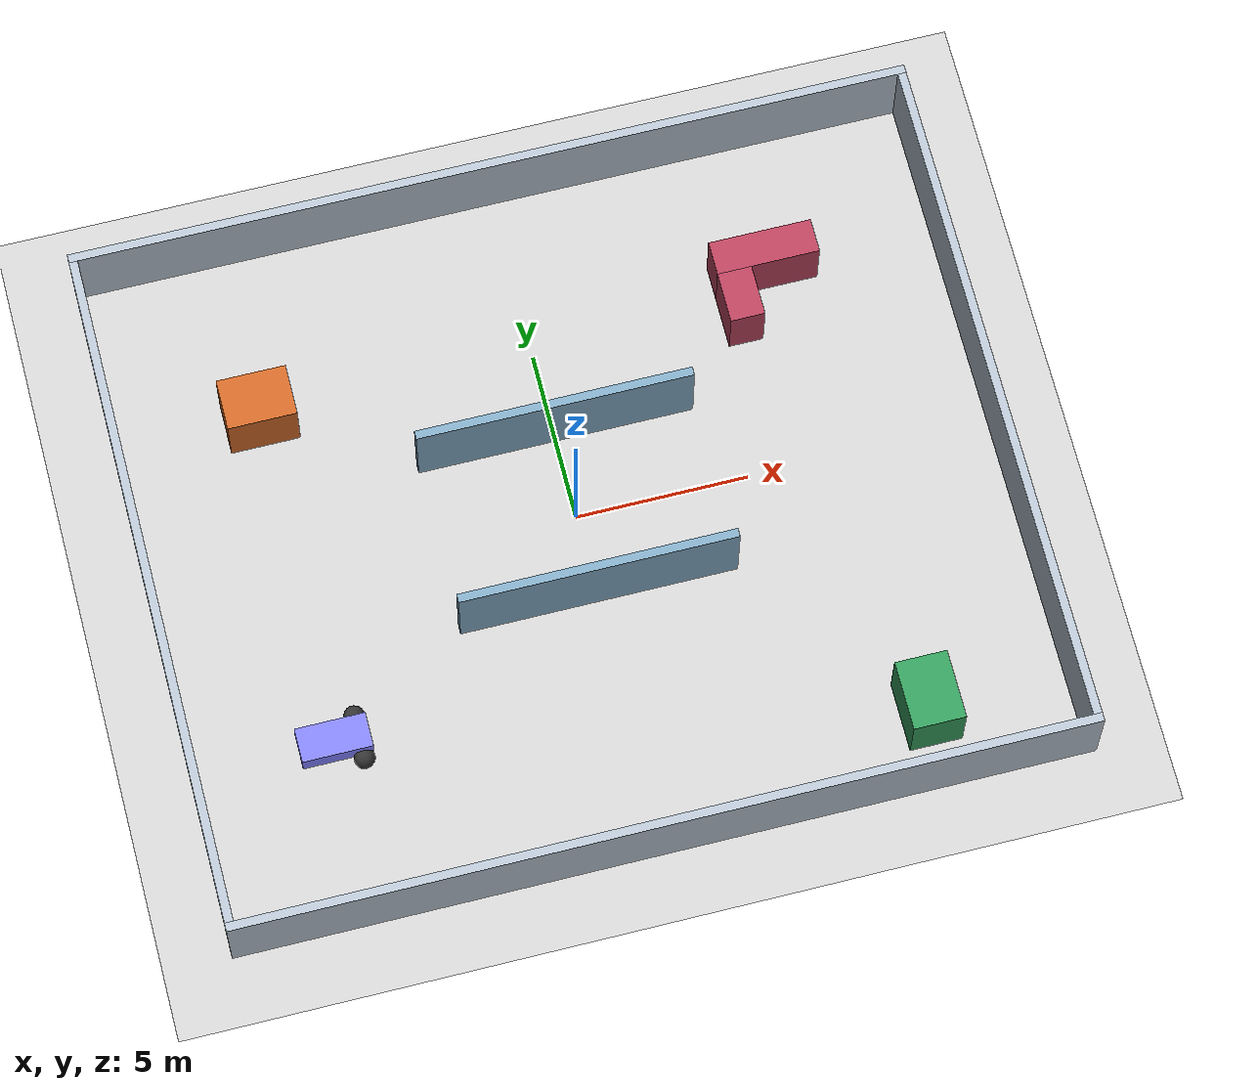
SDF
<?xml version="1.0"?>
<!-- Vehicle and ground derived from ros_gz_sim_demos (Apache-2.0). Modified: independent indoor room, corridor and three obstacles; spawn at (-8,-5). See third_party/README.md. -->
<sdf version="1.8">
  <world name="demo">
    <light name="sun" type="directional">
      <cast_shadows>true</cast_shadows>
      <pose>0 0 10 0 0 0</pose>
      <diffuse>0.8 0.8 0.8 1</diffuse>
      <specular>0.2 0.2 0.2 1</specular>
      <attenuation>
        <range>1000</range>
        <constant>0.9</constant>
        <linear>0.01</linear>
        <quadratic>0.001</quadratic>
      </attenuation>
      <direction>-0.5 0.1 -0.9</direction>
    </light>
    <model name="ground_plane">
      <static>true</static>
      <link name="link">
        <collision name="collision">
          <geometry>
            <plane>
              <normal>0 0 1</normal>
              <size>100 100</size>
            </plane>
          </geometry>
        </collision>
        <visual name="visual">
          <geometry>
            <plane>
              <normal>0 0 1</normal>
              <size>100 100</size>
            </plane>
          </geometry>
          <material>
            <ambient>0.8 0.8 0.8 1</ambient>
            <diffuse>0.8 0.8 0.8 1</diffuse>
            <specular>0.8 0.8 0.8 1</specular>
          </material>
        </visual>
      </link>
    </model>
    <model name="vehicle">
      <pose>-8 -5 0.325 0 0 0</pose>
      <link name="chassis">
        <pose>-0.151427 -0 0.175 0 -0 0</pose>
        <inertial>
          <mass>1.14395</mass>
          <inertia>
            <ixx>0.126164</ixx>
            <ixy>0</ixy>
            <ixz>0</ixz>
            <iyy>0.416519</iyy>
            <iyz>0</iyz>
            <izz>0.481014</izz>
          </inertia>
        </inertial>
        <visual name="visual_chassis">
          <geometry>
            <box>
              <size>2.01142 1 0.568726</size>
            </box>
          </geometry>
          <material>
            <ambient>0.5 0.5 1.0 1</ambient>
            <diffuse>0.5 0.5 1.0 1</diffuse>
            <specular>0.0 0.0 1.0 1</specular>
          </material>
        </visual>
        <collision name="collision_chassis">
          <geometry>
            <box>
              <size>2.01142 1 0.568726</size>
            </box>
          </geometry>
        </collision>
        <sensor name="lidar_2d" type="gpu_lidar">
          <pose>0 0 0.4 0 0 0</pose>
          <topic>/scan</topic>
          <gz_frame_id>vehicle/lidar</gz_frame_id>
          <always_on>true</always_on>
          <update_rate>10</update_rate>
          <visualize>true</visualize>
          <ray>
            <scan>
              <horizontal>
                <samples>360</samples>
                <resolution>1</resolution>
                <min_angle>-3.141592653589793</min_angle>
                <max_angle>3.141592653589793</max_angle>
              </horizontal>
              <vertical>
                <samples>1</samples>
                <resolution>1</resolution>
                <min_angle>0</min_angle>
                <max_angle>0</max_angle>
              </vertical>
            </scan>
            <range>
              <min>0.1</min>
              <max>12.0</max>
              <resolution>0.01</resolution>
            </range>
          </ray>
        </sensor>
      </link>
      <link name="left_wheel">
        <pose>0.554283 0.625029 -0.025 -1.5707 0 0</pose>
        <inertial>
          <mass>2</mass>
          <inertia>
            <ixx>0.145833</ixx>
            <ixy>0</ixy>
            <ixz>0</ixz>
            <iyy>0.145833</iyy>
            <iyz>0</iyz>
            <izz>0.125</izz>
          </inertia>
        </inertial>
        <visual name="visual_left_wheel">
          <geometry>
            <sphere>
              <radius>0.3</radius>
            </sphere>
          </geometry>
          <material>
            <ambient>0.2 0.2 0.2 1</ambient>
            <diffuse>0.2 0.2 0.2 1</diffuse>
            <specular>0.2 0.2 0.2 1</specular>
          </material>
        </visual>
        <collision name="collision_left_wheel">
          <geometry>
            <sphere>
              <radius>0.3</radius>
            </sphere>
          </geometry>
        </collision>
      </link>
      <link name="right_wheel">
        <pose>0.554282 -0.625029 -0.025 -1.5707 0 0</pose>
        <inertial>
          <mass>2</mass>
          <inertia>
            <ixx>0.145833</ixx>
            <ixy>0</ixy>
            <ixz>0</ixz>
            <iyy>0.145833</iyy>
            <iyz>0</iyz>
            <izz>0.125</izz>
          </inertia>
        </inertial>
        <visual name="visual_right_wheel">
          <geometry>
            <sphere>
              <radius>0.3</radius>
            </sphere>
          </geometry>
          <material>
            <ambient>0.2 0.2 0.2 1</ambient>
            <diffuse>0.2 0.2 0.2 1</diffuse>
            <specular>0.2 0.2 0.2 1</specular>
          </material>
        </visual>
        <collision name="collision_right_wheel">
          <geometry>
            <sphere>
              <radius>0.3</radius>
            </sphere>
          </geometry>
        </collision>
      </link>
      <link name="caster">
        <pose>-0.957138 -0 -0.125 0 -0 0</pose>
        <inertial>
          <mass>1</mass>
          <inertia>
            <ixx>0.1</ixx>
            <ixy>0</ixy>
            <ixz>0</ixz>
            <iyy>0.1</iyy>
            <iyz>0</iyz>
            <izz>0.1</izz>
          </inertia>
        </inertial>
        <visual name="visual_caster">
          <geometry>
            <sphere>
              <radius>0.2</radius>
            </sphere>
          </geometry>
          <material>
            <ambient>0.2 0.2 0.2 1</ambient>
            <diffuse>0.2 0.2 0.2 1</diffuse>
            <specular>0.2 0.2 0.2 1</specular>
          </material>
        </visual>
        <collision name="collision_caster">
          <geometry>
            <sphere>
              <radius>0.2</radius>
            </sphere>
          </geometry>
        </collision>
      </link>
      <joint name="left_wheel_joint" type="revolute">
        <parent>chassis</parent>
        <child>left_wheel</child>
        <axis>
          <xyz>0 0 1</xyz>
          <limit>
            <lower>-1.79769e+308</lower>
            <upper>1.79769e+308</upper>
          </limit>
        </axis>
      </joint>
      <joint name="right_wheel_joint" type="revolute">
        <parent>chassis</parent>
        <child>right_wheel</child>
        <axis>
          <xyz>0 0 1</xyz>
          <limit>
            <lower>-1.79769e+308</lower>
            <upper>1.79769e+308</upper>
          </limit>
        </axis>
      </joint>
      <joint name="caster_wheel" type="ball">
        <parent>chassis</parent>
        <child>caster</child>
      </joint>
      <plugin filename="gz-sim-diff-drive-system" name="gz::sim::systems::DiffDrive">
        <left_joint>left_wheel_joint</left_joint>
        <right_joint>right_wheel_joint</right_joint>
        <wheel_separation>1.25</wheel_separation>
        <wheel_radius>0.3</wheel_radius>
        <odom_publish_frequency>30</odom_publish_frequency>
        <frame_id>vehicle/odom</frame_id>
        <child_frame_id>vehicle/base_link</child_frame_id>
        <tf_topic>/model/vehicle/tf</tf_topic>
      </plugin>
      <plugin filename="gz-sim-joint-state-publisher-system" name="gz::sim::systems::JointStatePublisher" />
    </model>
    <plugin filename="gz-sim-physics-system" name="gz::sim::systems::Physics" />
    <plugin filename="gz-sim-user-commands-system" name="gz::sim::systems::UserCommands" />
    <plugin filename="gz-sim-scene-broadcaster-system" name="gz::sim::systems::SceneBroadcaster" />
    <plugin filename="gz-sim-sensors-system" name="gz::sim::systems::Sensors">
      <render_engine>ogre2</render_engine>
    </plugin>
    <model name="room_perimeter">
      <static>true</static>
      <pose>0 0 0 0 0 0</pose>
      <link name="structure">
        <collision name="north_collision">
          <pose>0 10.125 1.25 0 0 0</pose>
          <geometry>
            <box>
              <size>24.5 0.25 2.5</size>
            </box>
          </geometry>
        </collision>
        <visual name="north_visual">
          <pose>0 10.125 1.25 0 0 0</pose>
          <geometry>
            <box>
              <size>24.5 0.25 2.5</size>
            </box>
          </geometry>
          <material>
            <ambient>0.7 0.75 0.8 1</ambient>
            <diffuse>0.7 0.75 0.8 1</diffuse>
          </material>
        </visual>
        <collision name="south_collision">
          <pose>0 -10.125 1.25 0 0 0</pose>
          <geometry>
            <box>
              <size>24.5 0.25 2.5</size>
            </box>
          </geometry>
        </collision>
        <visual name="south_visual">
          <pose>0 -10.125 1.25 0 0 0</pose>
          <geometry>
            <box>
              <size>24.5 0.25 2.5</size>
            </box>
          </geometry>
          <material>
            <ambient>0.7 0.75 0.8 1</ambient>
            <diffuse>0.7 0.75 0.8 1</diffuse>
          </material>
        </visual>
        <collision name="east_collision">
          <pose>12.125 0 1.25 0 0 0</pose>
          <geometry>
            <box>
              <size>0.25 20 2.5</size>
            </box>
          </geometry>
        </collision>
        <visual name="east_visual">
          <pose>12.125 0 1.25 0 0 0</pose>
          <geometry>
            <box>
              <size>0.25 20 2.5</size>
            </box>
          </geometry>
          <material>
            <ambient>0.7 0.75 0.8 1</ambient>
            <diffuse>0.7 0.75 0.8 1</diffuse>
          </material>
        </visual>
        <collision name="west_collision">
          <pose>-12.125 0 1.25 0 0 0</pose>
          <geometry>
            <box>
              <size>0.25 20 2.5</size>
            </box>
          </geometry>
        </collision>
        <visual name="west_visual">
          <pose>-12.125 0 1.25 0 0 0</pose>
          <geometry>
            <box>
              <size>0.25 20 2.5</size>
            </box>
          </geometry>
          <material>
            <ambient>0.7 0.75 0.8 1</ambient>
            <diffuse>0.7 0.75 0.8 1</diffuse>
          </material>
        </visual>
      </link>
    </model>
    <model name="corridor_north">
      <static>true</static>
      <pose>0 2.5 0 0 0 0</pose>
      <link name="structure">
        <collision name="wall_collision">
          <pose>0 0 1.25 0 0 0</pose>
          <geometry>
            <box>
              <size>8 0.25 2.5</size>
            </box>
          </geometry>
        </collision>
        <visual name="wall_visual">
          <pose>0 0 1.25 0 0 0</pose>
          <geometry>
            <box>
              <size>8 0.25 2.5</size>
            </box>
          </geometry>
          <material>
            <ambient>0.5 0.65 0.75 1</ambient>
            <diffuse>0.5 0.65 0.75 1</diffuse>
          </material>
        </visual>
      </link>
    </model>
    <model name="corridor_south">
      <static>true</static>
      <pose>0 -2.5 0 0 0 0</pose>
      <link name="structure">
        <collision name="wall_collision">
          <pose>0 0 1.25 0 0 0</pose>
          <geometry>
            <box>
              <size>8 0.25 2.5</size>
            </box>
          </geometry>
        </collision>
        <visual name="wall_visual">
          <pose>0 0 1.25 0 0 0</pose>
          <geometry>
            <box>
              <size>8 0.25 2.5</size>
            </box>
          </geometry>
          <material>
            <ambient>0.5 0.65 0.75 1</ambient>
            <diffuse>0.5 0.65 0.75 1</diffuse>
          </material>
        </visual>
      </link>
    </model>
    <model name="obstacle_west_block">
      <static>true</static>
      <pose>-8 5 0 0 0 0</pose>
      <link name="structure">
        <collision name="box_collision">
          <pose>0 0 0.9 0 0 0</pose>
          <geometry>
            <box>
              <size>2 1.5 1.8</size>
            </box>
          </geometry>
        </collision>
        <visual name="box_visual">
          <pose>0 0 0.9 0 0 0</pose>
          <geometry>
            <box>
              <size>2 1.5 1.8</size>
            </box>
          </geometry>
          <material>
            <ambient>0.8 0.4 0.15 1</ambient>
            <diffuse>0.8 0.4 0.15 1</diffuse>
          </material>
        </visual>
      </link>
    </model>
    <model name="obstacle_southeast_cabinet">
      <static>true</static>
      <pose>8 -8 0 0 0 0</pose>
      <link name="structure">
        <collision name="box_collision">
          <pose>0 0 0.9 0 0 0</pose>
          <geometry>
            <box>
              <size>1.5 2 1.8</size>
            </box>
          </geometry>
        </collision>
        <visual name="box_visual">
          <pose>0 0 0.9 0 0 0</pose>
          <geometry>
            <box>
              <size>1.5 2 1.8</size>
            </box>
          </geometry>
          <material>
            <ambient>0.2 0.6 0.35 1</ambient>
            <diffuse>0.2 0.6 0.35 1</diffuse>
          </material>
        </visual>
      </link>
    </model>
    <model name="obstacle_northeast_l_shape">
      <static>true</static>
      <pose>7 6 0 0 0 0</pose>
      <link name="structure">
        <collision name="long_collision">
          <pose>0 0 0.9 0 0 0</pose>
          <geometry>
            <box>
              <size>3 1 1.8</size>
            </box>
          </geometry>
        </collision>
        <visual name="long_visual">
          <pose>0 0 0.9 0 0 0</pose>
          <geometry>
            <box>
              <size>3 1 1.8</size>
            </box>
          </geometry>
          <material>
            <ambient>0.7 0.25 0.35 1</ambient>
            <diffuse>0.7 0.25 0.35 1</diffuse>
          </material>
        </visual>
        <collision name="short_collision">
          <pose>-1 -1.25 0.9 0 0 0</pose>
          <geometry>
            <box>
              <size>1 1.5 1.8</size>
            </box>
          </geometry>
        </collision>
        <visual name="short_visual">
          <pose>-1 -1.25 0.9 0 0 0</pose>
          <geometry>
            <box>
              <size>1 1.5 1.8</size>
            </box>
          </geometry>
          <material>
            <ambient>0.7 0.25 0.35 1</ambient>
            <diffuse>0.7 0.25 0.35 1</diffuse>
          </material>
        </visual>
      </link>
    </model>
  </world>
</sdf>
